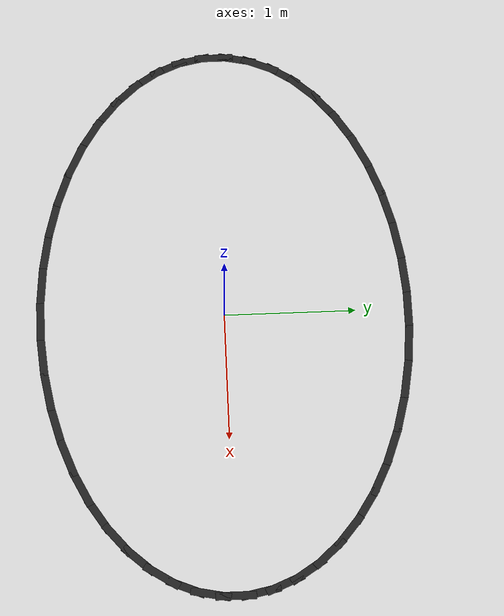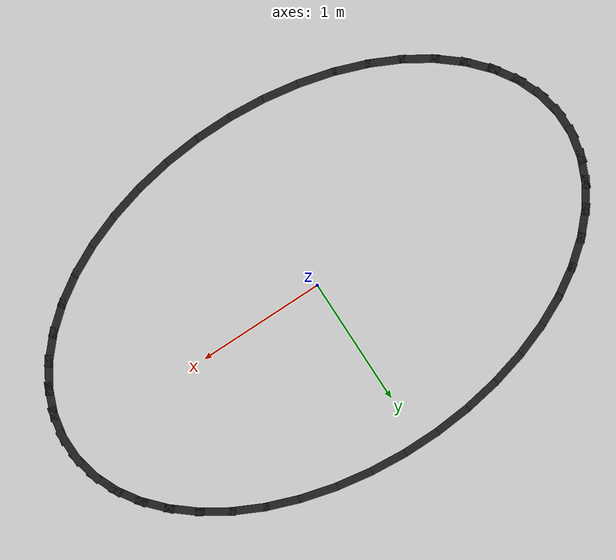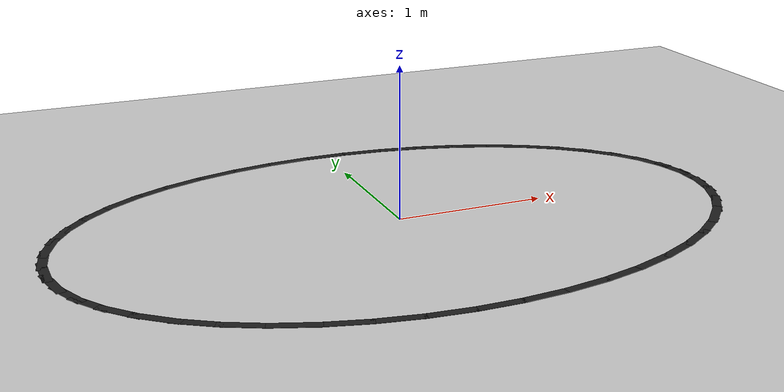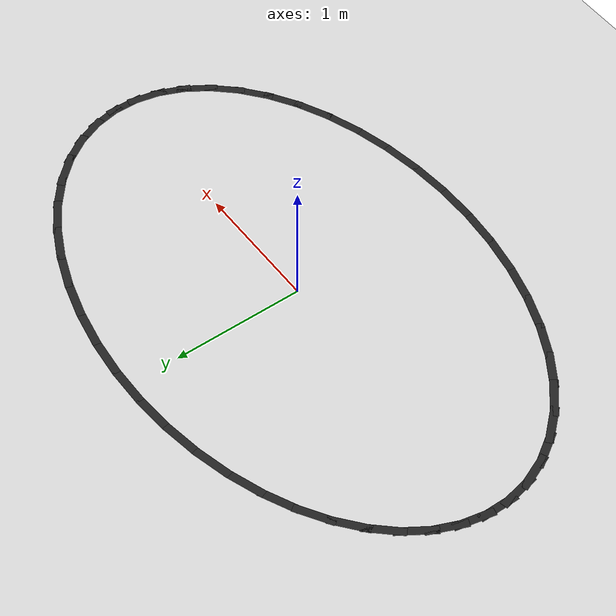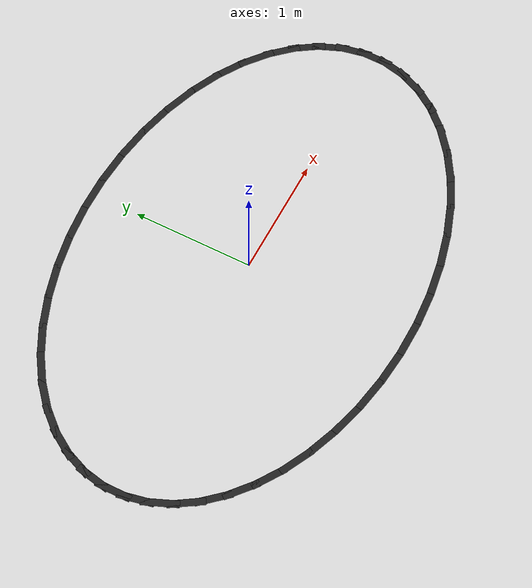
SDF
<?xml version="1.0"?>
<sdf version="1.6">
  <world name="line_track">
    <include><uri>model://sun</uri></include>
    <include><uri>model://ground_plane</uri></include>
    <model name="line_0"><static>true</static><pose>2.200 0.000 0.001 0 0 1.571</pose>
      <link name="l"><visual name="v">
        <geometry><box><size>0.302 0.06 0.002</size></box></geometry>
        <material><script><uri>file://media/materials/scripts/gazebo.material</uri><name>Gazebo/Black</name></script></material>
      </visual></link></model>
    <model name="line_1"><static>true</static><pose>2.181 0.183 0.001 0 0 1.775</pose>
      <link name="l"><visual name="v">
        <geometry><box><size>0.302 0.06 0.002</size></box></geometry>
        <material><script><uri>file://media/materials/scripts/gazebo.material</uri><name>Gazebo/Black</name></script></material>
      </visual></link></model>
    <model name="line_2"><static>true</static><pose>2.125 0.362 0.001 0 0 1.969</pose>
      <link name="l"><visual name="v">
        <geometry><box><size>0.302 0.06 0.002</size></box></geometry>
        <material><script><uri>file://media/materials/scripts/gazebo.material</uri><name>Gazebo/Black</name></script></material>
      </visual></link></model>
    <model name="line_3"><static>true</static><pose>2.033 0.536 0.001 0 0 2.148</pose>
      <link name="l"><visual name="v">
        <geometry><box><size>0.302 0.06 0.002</size></box></geometry>
        <material><script><uri>file://media/materials/scripts/gazebo.material</uri><name>Gazebo/Black</name></script></material>
      </visual></link></model>
    <model name="line_4"><static>true</static><pose>1.905 0.700 0.001 0 0 2.308</pose>
      <link name="l"><visual name="v">
        <geometry><box><size>0.302 0.06 0.002</size></box></geometry>
        <material><script><uri>file://media/materials/scripts/gazebo.material</uri><name>Gazebo/Black</name></script></material>
      </visual></link></model>
    <model name="line_5"><static>true</static><pose>1.745 0.852 0.001 0 0 2.449</pose>
      <link name="l"><visual name="v">
        <geometry><box><size>0.302 0.06 0.002</size></box></geometry>
        <material><script><uri>file://media/materials/scripts/gazebo.material</uri><name>Gazebo/Black</name></script></material>
      </visual></link></model>
    <model name="line_6"><static>true</static><pose>1.556 0.990 0.001 0 0 2.575</pose>
      <link name="l"><visual name="v">
        <geometry><box><size>0.302 0.06 0.002</size></box></geometry>
        <material><script><uri>file://media/materials/scripts/gazebo.material</uri><name>Gazebo/Black</name></script></material>
      </visual></link></model>
    <model name="line_7"><static>true</static><pose>1.339 1.111 0.001 0 0 2.687</pose>
      <link name="l"><visual name="v">
        <geometry><box><size>0.302 0.06 0.002</size></box></geometry>
        <material><script><uri>file://media/materials/scripts/gazebo.material</uri><name>Gazebo/Black</name></script></material>
      </visual></link></model>
    <model name="line_8"><static>true</static><pose>1.100 1.212 0.001 0 0 2.789</pose>
      <link name="l"><visual name="v">
        <geometry><box><size>0.302 0.06 0.002</size></box></geometry>
        <material><script><uri>file://media/materials/scripts/gazebo.material</uri><name>Gazebo/Black</name></script></material>
      </visual></link></model>
    <model name="line_9"><static>true</static><pose>0.842 1.293 0.001 0 0 2.884</pose>
      <link name="l"><visual name="v">
        <geometry><box><size>0.302 0.06 0.002</size></box></geometry>
        <material><script><uri>file://media/materials/scripts/gazebo.material</uri><name>Gazebo/Black</name></script></material>
      </visual></link></model>
    <model name="line_10"><static>true</static><pose>0.569 1.352 0.001 0 0 2.973</pose>
      <link name="l"><visual name="v">
        <geometry><box><size>0.302 0.06 0.002</size></box></geometry>
        <material><script><uri>file://media/materials/scripts/gazebo.material</uri><name>Gazebo/Black</name></script></material>
      </visual></link></model>
    <model name="line_11"><static>true</static><pose>0.287 1.388 0.001 0 0 3.058</pose>
      <link name="l"><visual name="v">
        <geometry><box><size>0.302 0.06 0.002</size></box></geometry>
        <material><script><uri>file://media/materials/scripts/gazebo.material</uri><name>Gazebo/Black</name></script></material>
      </visual></link></model>
    <model name="line_12"><static>true</static><pose>0.000 1.400 0.001 0 0 3.142</pose>
      <link name="l"><visual name="v">
        <geometry><box><size>0.302 0.06 0.002</size></box></geometry>
        <material><script><uri>file://media/materials/scripts/gazebo.material</uri><name>Gazebo/Black</name></script></material>
      </visual></link></model>
    <model name="line_13"><static>true</static><pose>-0.287 1.388 0.001 0 0 -3.058</pose>
      <link name="l"><visual name="v">
        <geometry><box><size>0.302 0.06 0.002</size></box></geometry>
        <material><script><uri>file://media/materials/scripts/gazebo.material</uri><name>Gazebo/Black</name></script></material>
      </visual></link></model>
    <model name="line_14"><static>true</static><pose>-0.569 1.352 0.001 0 0 -2.973</pose>
      <link name="l"><visual name="v">
        <geometry><box><size>0.302 0.06 0.002</size></box></geometry>
        <material><script><uri>file://media/materials/scripts/gazebo.material</uri><name>Gazebo/Black</name></script></material>
      </visual></link></model>
    <model name="line_15"><static>true</static><pose>-0.842 1.293 0.001 0 0 -2.884</pose>
      <link name="l"><visual name="v">
        <geometry><box><size>0.302 0.06 0.002</size></box></geometry>
        <material><script><uri>file://media/materials/scripts/gazebo.material</uri><name>Gazebo/Black</name></script></material>
      </visual></link></model>
    <model name="line_16"><static>true</static><pose>-1.100 1.212 0.001 0 0 -2.789</pose>
      <link name="l"><visual name="v">
        <geometry><box><size>0.302 0.06 0.002</size></box></geometry>
        <material><script><uri>file://media/materials/scripts/gazebo.material</uri><name>Gazebo/Black</name></script></material>
      </visual></link></model>
    <model name="line_17"><static>true</static><pose>-1.339 1.111 0.001 0 0 -2.687</pose>
      <link name="l"><visual name="v">
        <geometry><box><size>0.302 0.06 0.002</size></box></geometry>
        <material><script><uri>file://media/materials/scripts/gazebo.material</uri><name>Gazebo/Black</name></script></material>
      </visual></link></model>
    <model name="line_18"><static>true</static><pose>-1.556 0.990 0.001 0 0 -2.575</pose>
      <link name="l"><visual name="v">
        <geometry><box><size>0.302 0.06 0.002</size></box></geometry>
        <material><script><uri>file://media/materials/scripts/gazebo.material</uri><name>Gazebo/Black</name></script></material>
      </visual></link></model>
    <model name="line_19"><static>true</static><pose>-1.745 0.852 0.001 0 0 -2.449</pose>
      <link name="l"><visual name="v">
        <geometry><box><size>0.302 0.06 0.002</size></box></geometry>
        <material><script><uri>file://media/materials/scripts/gazebo.material</uri><name>Gazebo/Black</name></script></material>
      </visual></link></model>
    <model name="line_20"><static>true</static><pose>-1.905 0.700 0.001 0 0 -2.308</pose>
      <link name="l"><visual name="v">
        <geometry><box><size>0.302 0.06 0.002</size></box></geometry>
        <material><script><uri>file://media/materials/scripts/gazebo.material</uri><name>Gazebo/Black</name></script></material>
      </visual></link></model>
    <model name="line_21"><static>true</static><pose>-2.033 0.536 0.001 0 0 -2.148</pose>
      <link name="l"><visual name="v">
        <geometry><box><size>0.302 0.06 0.002</size></box></geometry>
        <material><script><uri>file://media/materials/scripts/gazebo.material</uri><name>Gazebo/Black</name></script></material>
      </visual></link></model>
    <model name="line_22"><static>true</static><pose>-2.125 0.362 0.001 0 0 -1.969</pose>
      <link name="l"><visual name="v">
        <geometry><box><size>0.302 0.06 0.002</size></box></geometry>
        <material><script><uri>file://media/materials/scripts/gazebo.material</uri><name>Gazebo/Black</name></script></material>
      </visual></link></model>
    <model name="line_23"><static>true</static><pose>-2.181 0.183 0.001 0 0 -1.775</pose>
      <link name="l"><visual name="v">
        <geometry><box><size>0.302 0.06 0.002</size></box></geometry>
        <material><script><uri>file://media/materials/scripts/gazebo.material</uri><name>Gazebo/Black</name></script></material>
      </visual></link></model>
    <model name="line_24"><static>true</static><pose>-2.200 0.000 0.001 0 0 -1.571</pose>
      <link name="l"><visual name="v">
        <geometry><box><size>0.302 0.06 0.002</size></box></geometry>
        <material><script><uri>file://media/materials/scripts/gazebo.material</uri><name>Gazebo/Black</name></script></material>
      </visual></link></model>
    <model name="line_25"><static>true</static><pose>-2.181 -0.183 0.001 0 0 -1.367</pose>
      <link name="l"><visual name="v">
        <geometry><box><size>0.302 0.06 0.002</size></box></geometry>
        <material><script><uri>file://media/materials/scripts/gazebo.material</uri><name>Gazebo/Black</name></script></material>
      </visual></link></model>
    <model name="line_26"><static>true</static><pose>-2.125 -0.362 0.001 0 0 -1.172</pose>
      <link name="l"><visual name="v">
        <geometry><box><size>0.302 0.06 0.002</size></box></geometry>
        <material><script><uri>file://media/materials/scripts/gazebo.material</uri><name>Gazebo/Black</name></script></material>
      </visual></link></model>
    <model name="line_27"><static>true</static><pose>-2.033 -0.536 0.001 0 0 -0.994</pose>
      <link name="l"><visual name="v">
        <geometry><box><size>0.302 0.06 0.002</size></box></geometry>
        <material><script><uri>file://media/materials/scripts/gazebo.material</uri><name>Gazebo/Black</name></script></material>
      </visual></link></model>
    <model name="line_28"><static>true</static><pose>-1.905 -0.700 0.001 0 0 -0.834</pose>
      <link name="l"><visual name="v">
        <geometry><box><size>0.302 0.06 0.002</size></box></geometry>
        <material><script><uri>file://media/materials/scripts/gazebo.material</uri><name>Gazebo/Black</name></script></material>
      </visual></link></model>
    <model name="line_29"><static>true</static><pose>-1.745 -0.852 0.001 0 0 -0.692</pose>
      <link name="l"><visual name="v">
        <geometry><box><size>0.302 0.06 0.002</size></box></geometry>
        <material><script><uri>file://media/materials/scripts/gazebo.material</uri><name>Gazebo/Black</name></script></material>
      </visual></link></model>
    <model name="line_30"><static>true</static><pose>-1.556 -0.990 0.001 0 0 -0.567</pose>
      <link name="l"><visual name="v">
        <geometry><box><size>0.302 0.06 0.002</size></box></geometry>
        <material><script><uri>file://media/materials/scripts/gazebo.material</uri><name>Gazebo/Black</name></script></material>
      </visual></link></model>
    <model name="line_31"><static>true</static><pose>-1.339 -1.111 0.001 0 0 -0.454</pose>
      <link name="l"><visual name="v">
        <geometry><box><size>0.302 0.06 0.002</size></box></geometry>
        <material><script><uri>file://media/materials/scripts/gazebo.material</uri><name>Gazebo/Black</name></script></material>
      </visual></link></model>
    <model name="line_32"><static>true</static><pose>-1.100 -1.212 0.001 0 0 -0.352</pose>
      <link name="l"><visual name="v">
        <geometry><box><size>0.302 0.06 0.002</size></box></geometry>
        <material><script><uri>file://media/materials/scripts/gazebo.material</uri><name>Gazebo/Black</name></script></material>
      </visual></link></model>
    <model name="line_33"><static>true</static><pose>-0.842 -1.293 0.001 0 0 -0.258</pose>
      <link name="l"><visual name="v">
        <geometry><box><size>0.302 0.06 0.002</size></box></geometry>
        <material><script><uri>file://media/materials/scripts/gazebo.material</uri><name>Gazebo/Black</name></script></material>
      </visual></link></model>
    <model name="line_34"><static>true</static><pose>-0.569 -1.352 0.001 0 0 -0.169</pose>
      <link name="l"><visual name="v">
        <geometry><box><size>0.302 0.06 0.002</size></box></geometry>
        <material><script><uri>file://media/materials/scripts/gazebo.material</uri><name>Gazebo/Black</name></script></material>
      </visual></link></model>
    <model name="line_35"><static>true</static><pose>-0.287 -1.388 0.001 0 0 -0.084</pose>
      <link name="l"><visual name="v">
        <geometry><box><size>0.302 0.06 0.002</size></box></geometry>
        <material><script><uri>file://media/materials/scripts/gazebo.material</uri><name>Gazebo/Black</name></script></material>
      </visual></link></model>
    <model name="line_36"><static>true</static><pose>-0.000 -1.400 0.001 0 0 -0.000</pose>
      <link name="l"><visual name="v">
        <geometry><box><size>0.302 0.06 0.002</size></box></geometry>
        <material><script><uri>file://media/materials/scripts/gazebo.material</uri><name>Gazebo/Black</name></script></material>
      </visual></link></model>
    <model name="line_37"><static>true</static><pose>0.287 -1.388 0.001 0 0 0.084</pose>
      <link name="l"><visual name="v">
        <geometry><box><size>0.302 0.06 0.002</size></box></geometry>
        <material><script><uri>file://media/materials/scripts/gazebo.material</uri><name>Gazebo/Black</name></script></material>
      </visual></link></model>
    <model name="line_38"><static>true</static><pose>0.569 -1.352 0.001 0 0 0.169</pose>
      <link name="l"><visual name="v">
        <geometry><box><size>0.302 0.06 0.002</size></box></geometry>
        <material><script><uri>file://media/materials/scripts/gazebo.material</uri><name>Gazebo/Black</name></script></material>
      </visual></link></model>
    <model name="line_39"><static>true</static><pose>0.842 -1.293 0.001 0 0 0.258</pose>
      <link name="l"><visual name="v">
        <geometry><box><size>0.302 0.06 0.002</size></box></geometry>
        <material><script><uri>file://media/materials/scripts/gazebo.material</uri><name>Gazebo/Black</name></script></material>
      </visual></link></model>
    <model name="line_40"><static>true</static><pose>1.100 -1.212 0.001 0 0 0.352</pose>
      <link name="l"><visual name="v">
        <geometry><box><size>0.302 0.06 0.002</size></box></geometry>
        <material><script><uri>file://media/materials/scripts/gazebo.material</uri><name>Gazebo/Black</name></script></material>
      </visual></link></model>
    <model name="line_41"><static>true</static><pose>1.339 -1.111 0.001 0 0 0.454</pose>
      <link name="l"><visual name="v">
        <geometry><box><size>0.302 0.06 0.002</size></box></geometry>
        <material><script><uri>file://media/materials/scripts/gazebo.material</uri><name>Gazebo/Black</name></script></material>
      </visual></link></model>
    <model name="line_42"><static>true</static><pose>1.556 -0.990 0.001 0 0 0.567</pose>
      <link name="l"><visual name="v">
        <geometry><box><size>0.302 0.06 0.002</size></box></geometry>
        <material><script><uri>file://media/materials/scripts/gazebo.material</uri><name>Gazebo/Black</name></script></material>
      </visual></link></model>
    <model name="line_43"><static>true</static><pose>1.745 -0.852 0.001 0 0 0.692</pose>
      <link name="l"><visual name="v">
        <geometry><box><size>0.302 0.06 0.002</size></box></geometry>
        <material><script><uri>file://media/materials/scripts/gazebo.material</uri><name>Gazebo/Black</name></script></material>
      </visual></link></model>
    <model name="line_44"><static>true</static><pose>1.905 -0.700 0.001 0 0 0.834</pose>
      <link name="l"><visual name="v">
        <geometry><box><size>0.302 0.06 0.002</size></box></geometry>
        <material><script><uri>file://media/materials/scripts/gazebo.material</uri><name>Gazebo/Black</name></script></material>
      </visual></link></model>
    <model name="line_45"><static>true</static><pose>2.033 -0.536 0.001 0 0 0.994</pose>
      <link name="l"><visual name="v">
        <geometry><box><size>0.302 0.06 0.002</size></box></geometry>
        <material><script><uri>file://media/materials/scripts/gazebo.material</uri><name>Gazebo/Black</name></script></material>
      </visual></link></model>
    <model name="line_46"><static>true</static><pose>2.125 -0.362 0.001 0 0 1.172</pose>
      <link name="l"><visual name="v">
        <geometry><box><size>0.302 0.06 0.002</size></box></geometry>
        <material><script><uri>file://media/materials/scripts/gazebo.material</uri><name>Gazebo/Black</name></script></material>
      </visual></link></model>
    <model name="line_47"><static>true</static><pose>2.181 -0.183 0.001 0 0 1.367</pose>
      <link name="l"><visual name="v">
        <geometry><box><size>0.302 0.06 0.002</size></box></geometry>
        <material><script><uri>file://media/materials/scripts/gazebo.material</uri><name>Gazebo/Black</name></script></material>
      </visual></link></model>
  </world>
</sdf>
